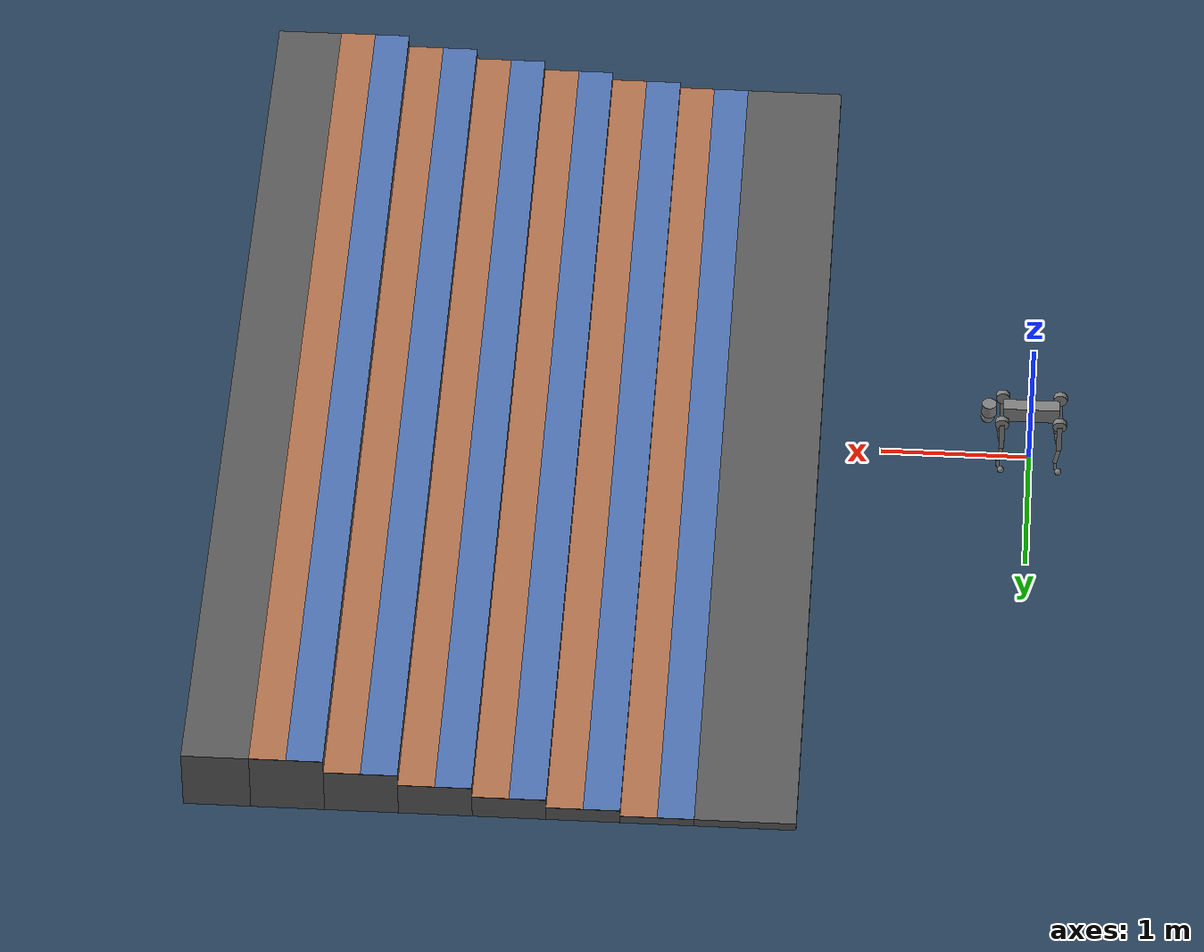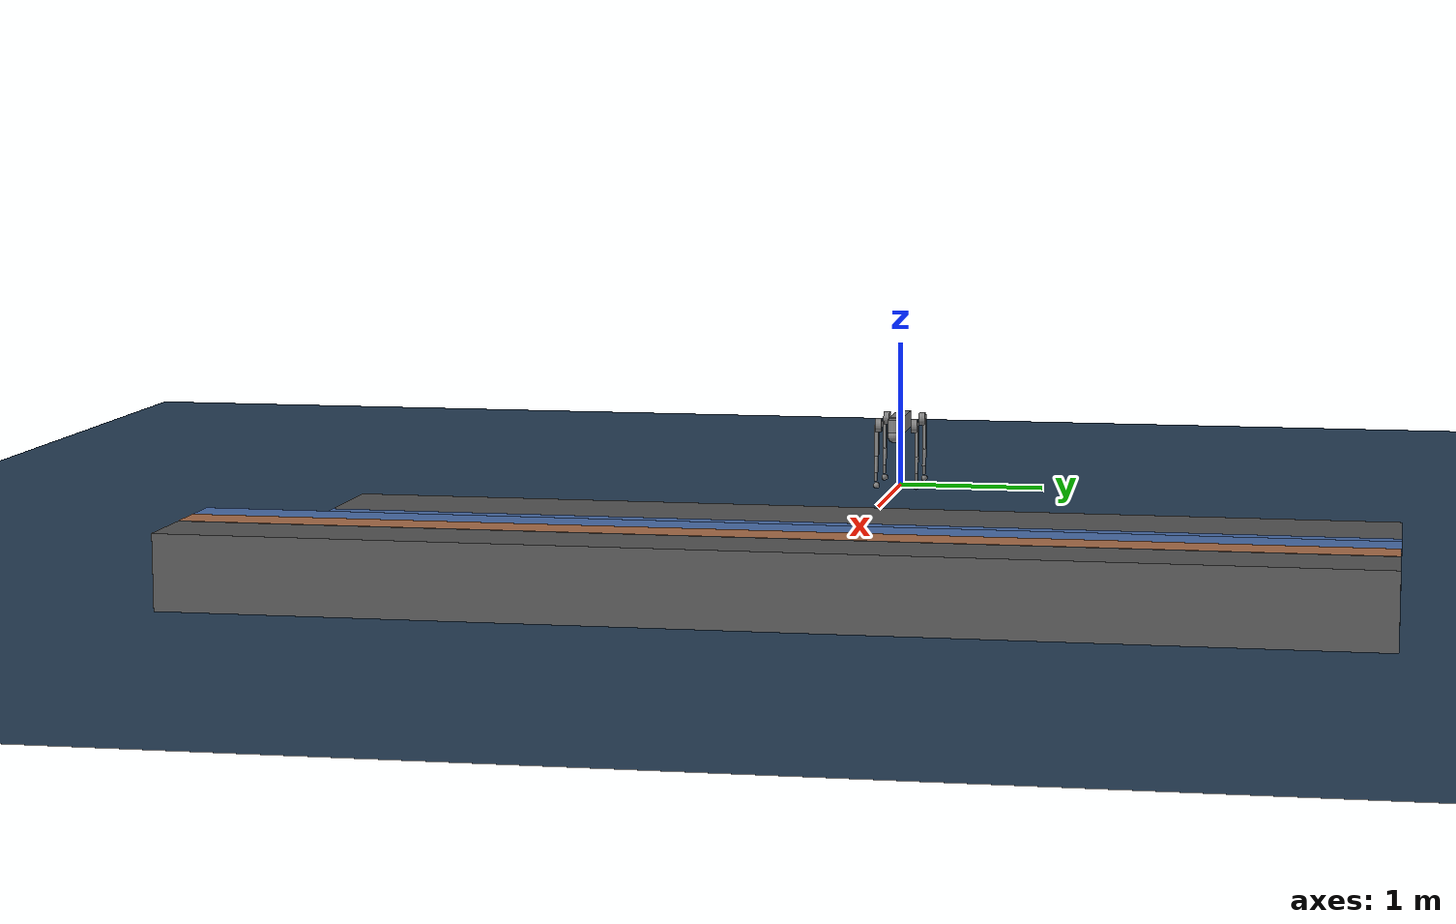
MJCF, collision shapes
<mujoco model="go2 stairs scene">
  <include file="go2.xml"/>

  <statistic center="0 0 0.2" extent="1.2"/>

  <visual>
    <headlight diffuse="0.6 0.6 0.6" ambient="0.3 0.3 0.3" specular="0 0 0"/>
    <rgba haze="0.15 0.25 0.35 1"/>
    <global azimuth="-130" elevation="-20"/>
  </visual>

  <asset>
    <texture type="skybox" builtin="gradient" rgb1="0.3 0.5 0.7" rgb2="0 0 0" width="512" height="3072"/>
    <texture type="2d" name="groundplane" builtin="checker" mark="edge"
      rgb1="0.2 0.3 0.4" rgb2="0.1 0.2 0.3" markrgb="0.8 0.8 0.8" width="300" height="300"/>
    <material name="groundplane" texture="groundplane" texuniform="true" texrepeat="5 5" reflectance="0.2"/>
    <material name="platform" rgba="0.35 0.35 0.35 1"/>
    <material name="stair_up" rgba="0.30 0.45 0.70 1"/>
    <material name="stair_down" rgba="0.70 0.45 0.30 1"/>
  </asset>

  <worldbody>
    <light pos="0 0 1.5" dir="0 0 -1" directional="true"/>
    <!-- Terrain contact tuning: stiffer contact + small margin reduces apparent sink at sharp edges. -->
    <geom name="floor" size="0 0 0.05" type="plane" material="groundplane"
      friction="1.0 0.03 0.01" condim="6" margin="0.004" solref="0.003 1" solimp="0.95 0.99 0.001" priority="2"/>

    <!-- Flat start platform (ends exactly at x=2.08, where level_01 begins) -->
    <geom name="start_pad" type="box" pos="1.75 0 0.03" size="0.33 3.5 0.03" material="platform"
      friction="1.0 0.03 0.01" condim="6" margin="0.004" solref="0.003 1" solimp="0.95 0.99 0.001" priority="2"/>

    <!-- Collision stairs: one slab per height level (removes internal seam catch points). -->
    <geom name="level_01" type="box" pos="2.32 0 0.03"  size="0.24 3.5 0.03"  material="platform"
      friction="1.0 0.03 0.01" condim="6" margin="0.004" solref="0.003 1" solimp="0.95 0.99 0.001" priority="2"/>
    <geom name="level_02" type="box" pos="2.80 0 0.055" size="0.24 3.5 0.055" material="platform"
      friction="1.0 0.03 0.01" condim="6" margin="0.004" solref="0.003 1" solimp="0.95 0.99 0.001" priority="2"/>
    <geom name="level_03" type="box" pos="3.28 0 0.09"  size="0.24 3.5 0.09"  material="platform"
      friction="1.0 0.03 0.01" condim="6" margin="0.004" solref="0.003 1" solimp="0.95 0.99 0.001" priority="2"/>
    <geom name="level_04" type="box" pos="3.76 0 0.13"  size="0.24 3.5 0.13"  material="platform"
      friction="1.0 0.03 0.01" condim="6" margin="0.004" solref="0.003 1" solimp="0.95 0.99 0.001" priority="2"/>
    <geom name="level_05" type="box" pos="4.24 0 0.175" size="0.24 3.5 0.175" material="platform"
      friction="1.0 0.03 0.01" condim="6" margin="0.004" solref="0.003 1" solimp="0.95 0.99 0.001" priority="2"/>
    <geom name="level_06" type="box" pos="4.72 0 0.225" size="0.24 3.5 0.225" material="platform"
      friction="1.0 0.03 0.01" condim="6" margin="0.004" solref="0.003 1" solimp="0.95 0.99 0.001" priority="2"/>

    <!-- Visual-only stripe overlay (no collision). -->
    <geom name="up_01_vis" type="box" pos="2.20 0 0.061"  size="0.12 3.5 0.001" material="stair_up"   contype="0" conaffinity="0"/>
    <geom name="down_01_vis" type="box" pos="2.44 0 0.061"  size="0.12 3.5 0.001" material="stair_down" contype="0" conaffinity="0"/>
    <geom name="up_02_vis" type="box" pos="2.68 0 0.111"  size="0.12 3.5 0.001" material="stair_up"   contype="0" conaffinity="0"/>
    <geom name="down_02_vis" type="box" pos="2.92 0 0.111"  size="0.12 3.5 0.001" material="stair_down" contype="0" conaffinity="0"/>
    <geom name="up_03_vis" type="box" pos="3.16 0 0.181"  size="0.12 3.5 0.001" material="stair_up"   contype="0" conaffinity="0"/>
    <geom name="down_03_vis" type="box" pos="3.40 0 0.181"  size="0.12 3.5 0.001" material="stair_down" contype="0" conaffinity="0"/>
    <geom name="up_04_vis" type="box" pos="3.64 0 0.261"  size="0.12 3.5 0.001" material="stair_up"   contype="0" conaffinity="0"/>
    <geom name="down_04_vis" type="box" pos="3.88 0 0.261"  size="0.12 3.5 0.001" material="stair_down" contype="0" conaffinity="0"/>
    <geom name="up_05_vis" type="box" pos="4.12 0 0.351"  size="0.12 3.5 0.001" material="stair_up"   contype="0" conaffinity="0"/>
    <geom name="down_05_vis" type="box" pos="4.36 0 0.351"  size="0.12 3.5 0.001" material="stair_down" contype="0" conaffinity="0"/>
    <geom name="up_06_vis" type="box" pos="4.60 0 0.451"  size="0.12 3.5 0.001" material="stair_up"   contype="0" conaffinity="0"/>
    <geom name="down_06_vis" type="box" pos="4.84 0 0.451"  size="0.12 3.5 0.001" material="stair_down" contype="0" conaffinity="0"/>

    <!-- Top landing at final level -->
    <geom name="landing" type="box" pos="5.18 0 0.225" size="0.22 3.5 0.225" material="platform"
      friction="1.0 0.03 0.01" condim="6" margin="0.004" solref="0.003 1" solimp="0.95 0.99 0.001" priority="2"/>
  </worldbody>
</mujoco>

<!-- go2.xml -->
<mujoco model="go2">
  <compiler angle="radian" meshdir="assets" autolimits="true" />

  <option cone="elliptic" impratio="100" />

  <default>
    <default class="go2">
      <geom friction="0.4" margin="0.001" condim="1"/>
      <joint axis="0 1 0" damping="0.1" armature="0.01" frictionloss="0.2"/>
      <motor ctrlrange="-23.7 23.7"/>
      <default class="abduction">
        <joint axis="1 0 0" range="-1.0472 1.0472"/>
      </default>
      <default class="hip">
        <default class="front_hip">
          <joint range="-1.5708 3.4907"/>
        </default>
        <default class="back_hip">
          <joint range="-0.5236 4.5379"/>
        </default>
      </default>
      <default class="knee">
        <joint range="-2.7227 -0.83776"/>
        <motor ctrlrange="-45.43 45.43"/>
      </default>
      <default class="visual">
        <geom type="mesh" contype="0" conaffinity="0" group="2"/>
      </default>
      <default class="collision">
        <geom group="3"/>
        <default class="foot">
          <geom size="0.022" pos="-0.002 0 -0.213" priority="1" condim="6"
            friction="0.4 0.02 0.01"/>
        </default>
      </default>
    </default>
  </default>

  <asset>
    <material name="metal" rgba=".9 .95 .95 1" />
    <material name="black" rgba="0 0 0 1" />
    <material name="white" rgba="1 1 1 1" />
    <material name="gray" rgba="0.671705 0.692426 0.774270 1" />

    <mesh file="base_0.obj" />
    <mesh file="base_1.obj" />
    <mesh file="base_2.obj" />
    <mesh file="base_3.obj" />
    <mesh file="base_4.obj" />
    <mesh file="hip_0.obj" />
    <mesh file="hip_1.obj" />
    <mesh file="thigh_0.obj" />
    <mesh file="thigh_1.obj" />
    <mesh file="thigh_mirror_0.obj" />
    <mesh file="thigh_mirror_1.obj" />
    <mesh file="calf_0.obj" />
    <mesh file="calf_1.obj" />
    <mesh file="calf_mirror_0.obj" />
    <mesh file="calf_mirror_1.obj" />
    <mesh file="foot.obj" />
  </asset>

  <worldbody>
    <body name="base_link" pos="0 0 0.445" childclass="go2">
      <inertial pos="0.021112 0 -0.005366" quat="-0.000543471 0.713435 -0.00173769 0.700719"
        mass="6.921"
        diaginertia="0.107027 0.0980771 0.0244531" />
      <freejoint />
      <geom mesh="base_0" material="black" class="visual" />
      <geom mesh="base_1" material="black" class="visual" />
      <geom mesh="base_2" material="black" class="visual" />
      <geom mesh="base_3" material="white" class="visual" />
      <geom mesh="base_4" material="gray" class="visual" />
      <geom size="0.1881 0.04675 0.057" type="box" class="collision" />
      <geom size="0.05 0.045" pos="0.285 0 0.01" type="cylinder" class="collision" />
      <geom size="0.047" pos="0.293 0 -0.06" class="collision" />
      <site name="imu" pos="-0.02557 0 0.04232" />
      <camera
        name="Gurukul_depth"
        pos="0.33 0 0.08"
        xyaxes="0 -1 0 0.3420201433 0 0.9396926208"
        resolution="106 60"
        focal="0.11041 0.11041"
        sensorsize="0.20955 0.12240"
        principalpixel="0 0"
      />
      <body name="FL_hip" pos="0.1934 0.0465 0">
        <inertial pos="-0.0054 0.00194 -0.000105" quat="0.497014 0.499245 0.505462 0.498237"
          mass="0.678"
          diaginertia="0.00088403 0.000596003 0.000479967" />
        <joint name="FL_hip_joint" class="abduction" />
        <geom mesh="hip_0" material="metal" class="visual" />
        <geom mesh="hip_1" material="gray" class="visual" />
        <geom size="0.046 0.02" pos="0 0.08 0" quat="1 1 0 0" type="cylinder" class="collision" />
        <body name="FL_thigh" pos="0 0.0955 0">
          <inertial pos="-0.00374 -0.0223 -0.0327" quat="0.829533 0.0847635 -0.0200632 0.551623"
            mass="1.152"
            diaginertia="0.00594973 0.00584149 0.000878787" />
          <joint name="FL_thigh_joint" class="front_hip" />
          <geom mesh="thigh_0" material="metal" class="visual" />
          <geom mesh="thigh_1" material="gray" class="visual" />
          <geom size="0.1065 0.01225 0.017" pos="0 0 -0.1065" quat="0.707107 0 0.707107 0"
            type="box" class="collision" />
          <body name="FL_calf" pos="0 0 -0.213">
            <inertial pos="0.00629595 -0.000622121 -0.141417"
              quat="0.710672 0.00154099 -0.00450087 0.703508"
              mass="0.241352" diaginertia="0.0014901 0.00146356 5.31397e-05" />
            <joint name="FL_calf_joint" class="knee" />
            <geom mesh="calf_0" material="gray" class="visual" />
            <geom mesh="calf_1" material="black" class="visual" />
            <geom size="0.012 0.06" pos="0.008 0 -0.06" quat="0.994493 0 -0.104807 0"
              type="cylinder" class="collision" />
            <geom size="0.011 0.0325" pos="0.02 0 -0.148" quat="0.999688 0 0.0249974 0"
              type="cylinder" class="collision" />
            <geom pos="0 0 -0.213" mesh="foot" class="visual" material="black" />
            <geom name="FL" class="foot" />
            <body name="FL_foot" pos="0 0 -0.213" />
          </body>
        </body>
      </body>
      <body name="FR_hip" pos="0.1934 -0.0465 0">
        <inertial pos="-0.0054 -0.00194 -0.000105" quat="0.498237 0.505462 0.499245 0.497014"
          mass="0.678"
          diaginertia="0.00088403 0.000596003 0.000479967" />
        <joint name="FR_hip_joint" class="abduction" />
        <geom mesh="hip_0" material="metal" class="visual" quat="4.63268e-05 1 0 0" />
        <geom mesh="hip_1" material="gray" class="visual" quat="4.63268e-05 1 0 0" />
        <geom size="0.046 0.02" pos="0 -0.08 0" quat="0.707107 0.707107 0 0" type="cylinder"
          class="collision" />
        <body name="FR_thigh" pos="0 -0.0955 0">
          <inertial pos="-0.00374 0.0223 -0.0327" quat="0.551623 -0.0200632 0.0847635 0.829533"
            mass="1.152"
            diaginertia="0.00594973 0.00584149 0.000878787" />
          <joint name="FR_thigh_joint" class="front_hip" />
          <geom mesh="thigh_mirror_0" material="metal" class="visual" />
          <geom mesh="thigh_mirror_1" material="gray" class="visual" />
          <geom size="0.1065 0.01225 0.017" pos="0 0 -0.1065" quat="0.707107 0 0.707107 0"
            type="box" class="collision" />
          <body name="FR_calf" pos="0 0 -0.213">
            <inertial pos="0.00629595 0.000622121 -0.141417"
              quat="0.703508 -0.00450087 0.00154099 0.710672"
              mass="0.241352" diaginertia="0.0014901 0.00146356 5.31397e-05" />
            <joint name="FR_calf_joint" class="knee" />
            <geom mesh="calf_mirror_0" material="gray" class="visual" />
            <geom mesh="calf_mirror_1" material="black" class="visual" />
            <geom size="0.013 0.06" pos="0.01 0 -0.06" quat="0.995004 0 -0.0998334 0"
              type="cylinder" class="collision" />
            <geom size="0.011 0.0325" pos="0.02 0 -0.148" quat="0.999688 0 0.0249974 0"
              type="cylinder" class="collision" />
            <geom pos="0 0 -0.213" mesh="foot" class="visual" material="black" />
            <geom name="FR" class="foot" />
            <body name="FR_foot" pos="0 0 -0.213" />
          </body>
        </body>
      </body>
      <body name="RL_hip" pos="-0.1934 0.0465 0">
        <inertial pos="0.0054 0.00194 -0.000105" quat="0.505462 0.498237 0.497014 0.499245"
          mass="0.678"
          diaginertia="0.00088403 0.000596003 0.000479967" />
        <joint name="RL_hip_joint" class="abduction" />
        <geom mesh="hip_0" material="metal" class="visual" quat="4.63268e-05 0 1 0" />
        <geom mesh="hip_1" material="gray" class="visual" quat="4.63268e-05 0 1 0" />
        <geom size="0.046 0.02" pos="0 0.08 0" quat="0.707107 0.707107 0 0" type="cylinder"
          class="collision" />
        <body name="RL_thigh" pos="0 0.0955 0">
          <inertial pos="-0.00374 -0.0223 -0.0327" quat="0.829533 0.0847635 -0.0200632 0.551623"
            mass="1.152"
            diaginertia="0.00594973 0.00584149 0.000878787" />
          <joint name="RL_thigh_joint" class="back_hip" />
          <geom mesh="thigh_0" material="metal" class="visual" />
          <geom mesh="thigh_1" material="gray" class="visual" />
          <geom size="0.1065 0.01225 0.017" pos="0 0 -0.1065" quat="0.707107 0 0.707107 0"
            type="box" class="collision" />
          <body name="RL_calf" pos="0 0 -0.213">
            <inertial pos="0.00629595 -0.000622121 -0.141417"
              quat="0.710672 0.00154099 -0.00450087 0.703508"
              mass="0.241352" diaginertia="0.0014901 0.00146356 5.31397e-05" />
            <joint name="RL_calf_joint" class="knee" />
            <geom mesh="calf_0" material="gray" class="visual" />
            <geom mesh="calf_1" material="black" class="visual" />
            <geom size="0.013 0.06" pos="0.01 0 -0.06" quat="0.995004 0 -0.0998334 0"
              type="cylinder" class="collision" />
            <geom size="0.011 0.0325" pos="0.02 0 -0.148" quat="0.999688 0 0.0249974 0"
              type="cylinder" class="collision" />
            <geom pos="0 0 -0.213" mesh="foot" class="visual" material="black" />
            <geom name="RL" class="foot" />
            <body name="RL_foot" pos="0 0 -0.213" />
          </body>
        </body>
      </body>
      <body name="RR_hip" pos="-0.1934 -0.0465 0">
        <inertial pos="0.0054 -0.00194 -0.000105" quat="0.499245 0.497014 0.498237 0.505462"
          mass="0.678"
          diaginertia="0.00088403 0.000596003 0.000479967" />
        <joint name="RR_hip_joint" class="abduction" />
        <geom mesh="hip_0" material="metal" class="visual"
          quat="2.14617e-09 4.63268e-05 4.63268e-05 -1" />
        <geom mesh="hip_1" material="gray" class="visual"
          quat="2.14617e-09 4.63268e-05 4.63268e-05 -1" />
        <geom size="0.046 0.02" pos="0 -0.08 0" quat="0.707107 0.707107 0 0" type="cylinder"
          class="collision" />
        <body name="RR_thigh" pos="0 -0.0955 0">
          <inertial pos="-0.00374 0.0223 -0.0327" quat="0.551623 -0.0200632 0.0847635 0.829533"
            mass="1.152"
            diaginertia="0.00594973 0.00584149 0.000878787" />
          <joint name="RR_thigh_joint" class="back_hip" />
          <geom mesh="thigh_mirror_0" material="metal" class="visual" />
          <geom mesh="thigh_mirror_1" material="gray" class="visual" />
          <geom size="0.1065 0.01225 0.017" pos="0 0 -0.1065" quat="0.707107 0 0.707107 0"
            type="box" class="collision" />
          <body name="RR_calf" pos="0 0 -0.213">
            <inertial pos="0.00629595 0.000622121 -0.141417"
              quat="0.703508 -0.00450087 0.00154099 0.710672"
              mass="0.241352" diaginertia="0.0014901 0.00146356 5.31397e-05" />
            <joint name="RR_calf_joint" class="knee" />
            <geom mesh="calf_mirror_0" material="gray" class="visual" />
            <geom mesh="calf_mirror_1" material="black" class="visual" />
            <geom size="0.013 0.06" pos="0.01 0 -0.06" quat="0.995004 0 -0.0998334 0"
              type="cylinder" class="collision" />
            <geom size="0.011 0.0325" pos="0.02 0 -0.148" quat="0.999688 0 0.0249974 0"
              type="cylinder" class="collision" />
            <geom pos="0 0 -0.213" mesh="foot" class="visual" material="black" />
            <geom name="RR" class="foot" />
            <body name="RR_foot" pos="0 0 -0.213" />
          </body>
        </body>
      </body>
    </body>
  </worldbody>

  <actuator>
    <motor class="abduction" name="FR_hip" joint="FR_hip_joint" />
    <motor class="hip" name="FR_thigh" joint="FR_thigh_joint" />
    <motor class="knee" name="FR_calf" joint="FR_calf_joint" />
    <motor class="abduction" name="FL_hip" joint="FL_hip_joint" />
    <motor class="hip" name="FL_thigh" joint="FL_thigh_joint" />
    <motor class="knee" name="FL_calf" joint="FL_calf_joint" />
    <motor class="abduction" name="RR_hip" joint="RR_hip_joint" />
    <motor class="hip" name="RR_thigh" joint="RR_thigh_joint" />
    <motor class="knee" name="RR_calf" joint="RR_calf_joint" />
    <motor class="abduction" name="RL_hip" joint="RL_hip_joint" />
    <motor class="hip" name="RL_thigh" joint="RL_thigh_joint" />
    <motor class="knee" name="RL_calf" joint="RL_calf_joint" />
  </actuator>

  <sensor>
    <jointpos name="FR_hip_pos" joint="FR_hip_joint" />
    <jointpos name="FR_thigh_pos" joint="FR_thigh_joint" />
    <jointpos name="FR_calf_pos" joint="FR_calf_joint" />
    <jointpos name="FL_hip_pos" joint="FL_hip_joint" />
    <jointpos name="FL_thigh_pos" joint="FL_thigh_joint" />
    <jointpos name="FL_calf_pos" joint="FL_calf_joint" />
    <jointpos name="RR_hip_pos" joint="RR_hip_joint" />
    <jointpos name="RR_thigh_pos" joint="RR_thigh_joint" />
    <jointpos name="RR_calf_pos" joint="RR_calf_joint" />
    <jointpos name="RL_hip_pos" joint="RL_hip_joint" />
    <jointpos name="RL_thigh_pos" joint="RL_thigh_joint" />
    <jointpos name="RL_calf_pos" joint="RL_calf_joint" />

    <jointvel name="FR_hip_vel" joint="FR_hip_joint" />
    <jointvel name="FR_thigh_vel" joint="FR_thigh_joint" />
    <jointvel name="FR_calf_vel" joint="FR_calf_joint" />
    <jointvel name="FL_hip_vel" joint="FL_hip_joint" />
    <jointvel name="FL_thigh_vel" joint="FL_thigh_joint" />
    <jointvel name="FL_calf_vel" joint="FL_calf_joint" />
    <jointvel name="RR_hip_vel" joint="RR_hip_joint" />
    <jointvel name="RR_thigh_vel" joint="RR_thigh_joint" />
    <jointvel name="RR_calf_vel" joint="RR_calf_joint" />
    <jointvel name="RL_hip_vel" joint="RL_hip_joint" />
    <jointvel name="RL_thigh_vel" joint="RL_thigh_joint" />
    <jointvel name="RL_calf_vel" joint="RL_calf_joint" />

    <jointactuatorfrc name="FR_hip_torque" joint="FR_hip_joint" noise="0.01" />
    <jointactuatorfrc name="FR_thigh_torque" joint="FR_thigh_joint" noise="0.01" />
    <jointactuatorfrc name="FR_calf_torque" joint="FR_calf_joint" noise="0.01" />
    <jointactuatorfrc name="FL_hip_torque" joint="FL_hip_joint" noise="0.01" />
    <jointactuatorfrc name="FL_thigh_torque" joint="FL_thigh_joint" noise="0.01" />
    <jointactuatorfrc name="FL_calf_torque" joint="FL_calf_joint" noise="0.01" />
    <jointactuatorfrc name="RR_hip_torque" joint="RR_hip_joint" noise="0.01" />
    <jointactuatorfrc name="RR_thigh_torque" joint="RR_thigh_joint" noise="0.01" />
    <jointactuatorfrc name="RR_calf_torque" joint="RR_calf_joint" noise="0.01" />
    <jointactuatorfrc name="RL_hip_torque" joint="RL_hip_joint" noise="0.01" />
    <jointactuatorfrc name="RL_thigh_torque" joint="RL_thigh_joint" noise="0.01" />
    <jointactuatorfrc name="RL_calf_torque" joint="RL_calf_joint" noise="0.01" />

    <framequat name="imu_quat" objtype="site" objname="imu" />
    <gyro name="imu_gyro" site="imu" />
    <accelerometer name="imu_acc" site="imu" />

    <framepos name="frame_pos" objtype="site" objname="imu" />
    <framelinvel name="frame_vel" objtype="site" objname="imu" />
  </sensor>

  <keyframe>
    <key name="home" qpos="0 0 0.27 1 0 0 0 0 0.9 -1.8 0 0.9 -1.8 0 0.9 -1.8 0 0.9 -1.8"
      ctrl="0 0.9 -1.8 0 0.9 -1.8 0 0.9 -1.8 0 0.9 -1.8" />
  </keyframe>
</mujoco>
